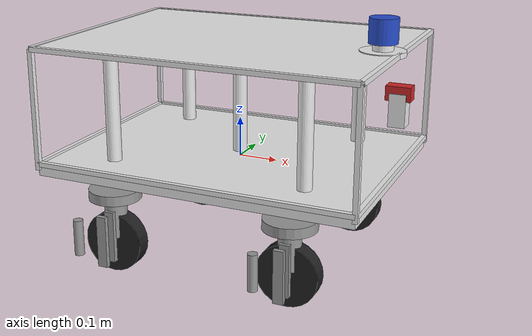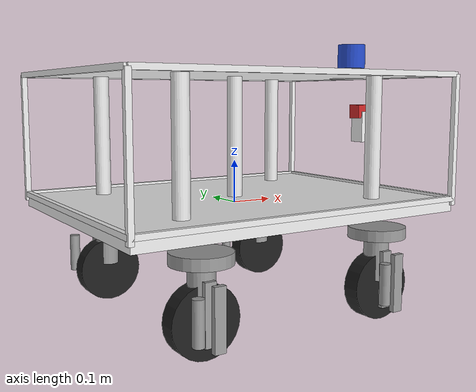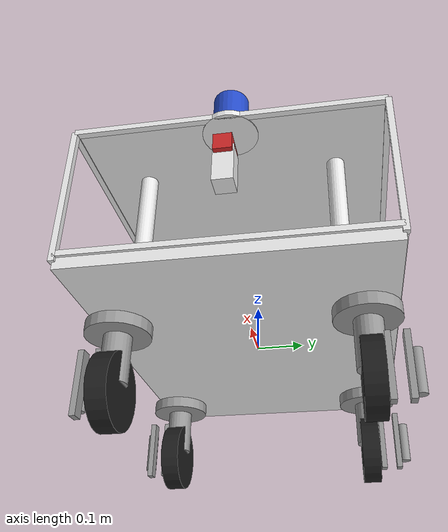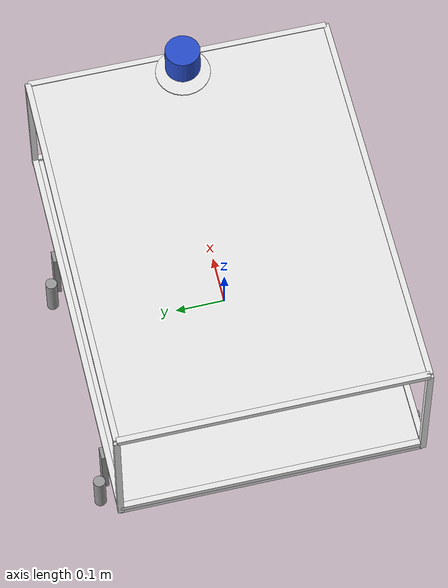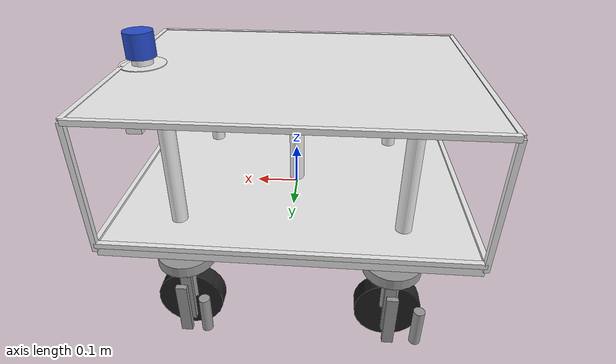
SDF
<?xml version='1.0' encoding='UTF-8'?>
<sdf version="1.9">
  <model name="inspection_bot">
    <link name="base_link">
      <inertial>
        <pose>-0.05165080332409973 -1.650415512465452e-05 -0.02308814404432133 0 0 0</pose>
        <mass>7.2199999999999998</mass>
        <inertia>
          <ixx>0.31320811063904169</ixx>
          <ixy>4.9172661324099557e-05</ixy>
          <ixz>-0.067711619664764536</ixz>
          <iyy>0.43423333109713758</iyy>
          <iyz>4.4758658044323012e-05</iyz>
          <izz>0.65877228650991904</izz>
        </inertia>
      </inertial>
      <collision name="base_link_collision">
        <pose>0 0 0 0 0 0</pose>
        <geometry>
          <box>
            <size>0.806 0.607 0.03</size>
          </box>
        </geometry>
        <surface>
          <contact>
            <ode />
          </contact>
          <friction>
            <ode />
          </friction>
        </surface>
      </collision>
      <collision name="base_link_fixed_joint_lump__camera_link_collision_1">
        <pose>0.4056 0 0.21 0 0 0</pose>
        <geometry>
          <box>
            <size>0.06 0.035 0.035</size>
          </box>
        </geometry>
        <surface>
          <contact>
            <ode />
          </contact>
          <friction>
            <ode />
          </friction>
        </surface>
      </collision>
      <collision name="base_link_fixed_joint_lump__lidar_link_collision_2">
        <pose>0.36101 -0.000993 0.35253 0 0 0</pose>
        <geometry>
          <cylinder>
            <length>0.059999999999999998</length>
            <radius>0.035000000000000003</radius>
          </cylinder>
        </geometry>
        <surface>
          <contact>
            <ode />
          </contact>
          <friction>
            <ode />
          </friction>
        </surface>
      </collision>
      <collision name="base_link_fixed_joint_lump__rl_steering_link_collision_3">
        <pose>-0.2284 0.238 -0.11 0 0 0</pose>
        <geometry>
          <cylinder>
            <length>0.080000000000000002</length>
            <radius>0.029999999999999999</radius>
          </cylinder>
        </geometry>
        <surface>
          <contact>
            <ode />
          </contact>
          <friction>
            <ode />
          </friction>
        </surface>
      </collision>
      <collision name="base_link_fixed_joint_lump__rr_steering_link_collision_4">
        <pose>-0.2284 -0.238 -0.11 0 0 0</pose>
        <geometry>
          <cylinder>
            <length>0.080000000000000002</length>
            <radius>0.029999999999999999</radius>
          </cylinder>
        </geometry>
        <surface>
          <contact>
            <ode />
          </contact>
          <friction>
            <ode />
          </friction>
        </surface>
      </collision>
      <visual name="base_link_visual">
        <pose>0 0 0 0 0 0</pose>
        <geometry>
          <box>
            <size>0.806 0.607 0.03</size>
          </box>
        </geometry>
        <material>
          <script>
            <name>Gazebo/White</name>
            <uri>file://media/materials/scripts/gazebo.material</uri>
          </script>
          <diffuse>0.9375 0.9375 0.9375 1</diffuse>
          <ambient>0.9375 0.9375 0.9375 1</ambient>
        </material>
      </visual>
      <visual name="base_link_visual_1">
        <pose>0 0 0.3 0 0 0</pose>
        <geometry>
          <box>
            <size>0.806 0.607 0.008</size>
          </box>
        </geometry>
        <material>
          <script>
            <name>Gazebo/White</name>
            <uri>file://media/materials/scripts/gazebo.material</uri>
          </script>
          <diffuse>0 0 0 1</diffuse>
          <ambient>0 0 0 1</ambient>
        </material>
      </visual>
      <visual name="base_link_visual_2">
        <pose>0 0.3035 0.015 0 0 0</pose>
        <geometry>
          <box>
            <size>0.806 0.012 0.012</size>
          </box>
        </geometry>
        <material>
          <script>
            <name>Gazebo/White</name>
            <uri>file://media/materials/scripts/gazebo.material</uri>
          </script>
          <diffuse>0 0 0 1</diffuse>
          <ambient>0 0 0 1</ambient>
        </material>
      </visual>
      <visual name="base_link_visual_3">
        <pose>0 -0.3035 0.015 0 0 0</pose>
        <geometry>
          <box>
            <size>0.806 0.012 0.012</size>
          </box>
        </geometry>
        <material>
          <script>
            <name>Gazebo/White</name>
            <uri>file://media/materials/scripts/gazebo.material</uri>
          </script>
          <diffuse>0 0 0 1</diffuse>
          <ambient>0 0 0 1</ambient>
        </material>
      </visual>
      <visual name="base_link_visual_4">
        <pose>0.403 0 0.015 0 0 0</pose>
        <geometry>
          <box>
            <size>0.012 0.607 0.012</size>
          </box>
        </geometry>
        <material>
          <script>
            <name>Gazebo/White</name>
            <uri>file://media/materials/scripts/gazebo.material</uri>
          </script>
          <diffuse>0 0 0 1</diffuse>
          <ambient>0 0 0 1</ambient>
        </material>
      </visual>
      <visual name="base_link_visual_5">
        <pose>-0.403 0 0.015 0 0 0</pose>
        <geometry>
          <box>
            <size>0.012 0.607 0.012</size>
          </box>
        </geometry>
        <material>
          <script>
            <name>Gazebo/White</name>
            <uri>file://media/materials/scripts/gazebo.material</uri>
          </script>
          <diffuse>0 0 0 1</diffuse>
          <ambient>0 0 0 1</ambient>
        </material>
      </visual>
      <visual name="base_link_visual_6">
        <pose>0 0.3035 0.3 0 0 0</pose>
        <geometry>
          <box>
            <size>0.806 0.012 0.012</size>
          </box>
        </geometry>
        <material>
          <script>
            <name>Gazebo/White</name>
            <uri>file://media/materials/scripts/gazebo.material</uri>
          </script>
          <diffuse>0 0 0 1</diffuse>
          <ambient>0 0 0 1</ambient>
        </material>
      </visual>
      <visual name="base_link_visual_7">
        <pose>0 -0.3035 0.3 0 0 0</pose>
        <geometry>
          <box>
            <size>0.806 0.012 0.012</size>
          </box>
        </geometry>
        <material>
          <script>
            <name>Gazebo/White</name>
            <uri>file://media/materials/scripts/gazebo.material</uri>
          </script>
          <diffuse>0 0 0 1</diffuse>
          <ambient>0 0 0 1</ambient>
        </material>
      </visual>
      <visual name="base_link_visual_8">
        <pose>0.403 0 0.3 0 0 0</pose>
        <geometry>
          <box>
            <size>0.012 0.607 0.012</size>
          </box>
        </geometry>
        <material>
          <script>
            <name>Gazebo/White</name>
            <uri>file://media/materials/scripts/gazebo.material</uri>
          </script>
          <diffuse>0 0 0 1</diffuse>
          <ambient>0 0 0 1</ambient>
        </material>
      </visual>
      <visual name="base_link_visual_9">
        <pose>-0.403 0 0.3 0 0 0</pose>
        <geometry>
          <box>
            <size>0.012 0.607 0.012</size>
          </box>
        </geometry>
        <material>
          <script>
            <name>Gazebo/White</name>
            <uri>file://media/materials/scripts/gazebo.material</uri>
          </script>
          <diffuse>0 0 0 1</diffuse>
          <ambient>0 0 0 1</ambient>
        </material>
      </visual>
      <visual name="base_link_visual_10">
        <pose>0.403 0.3035 0.15 0 0 0</pose>
        <geometry>
          <box>
            <size>0.012 0.012 0.3</size>
          </box>
        </geometry>
        <material>
          <script>
            <name>Gazebo/White</name>
            <uri>file://media/materials/scripts/gazebo.material</uri>
          </script>
          <diffuse>0 0 0 1</diffuse>
          <ambient>0 0 0 1</ambient>
        </material>
      </visual>
      <visual name="base_link_visual_11">
        <pose>0.403 -0.3035 0.15 0 0 0</pose>
        <geometry>
          <box>
            <size>0.012 0.012 0.3</size>
          </box>
        </geometry>
        <material>
          <script>
            <name>Gazebo/White</name>
            <uri>file://media/materials/scripts/gazebo.material</uri>
          </script>
          <diffuse>0 0 0 1</diffuse>
          <ambient>0 0 0 1</ambient>
        </material>
      </visual>
      <visual name="base_link_visual_12">
        <pose>-0.403 0.3035 0.15 0 0 0</pose>
        <geometry>
          <box>
            <size>0.012 0.012 0.3</size>
          </box>
        </geometry>
        <material>
          <script>
            <name>Gazebo/White</name>
            <uri>file://media/materials/scripts/gazebo.material</uri>
          </script>
          <diffuse>0 0 0 1</diffuse>
          <ambient>0 0 0 1</ambient>
        </material>
      </visual>
      <visual name="base_link_visual_13">
        <pose>-0.403 -0.3035 0.15 0 0 0</pose>
        <geometry>
          <box>
            <size>0.012 0.012 0.3</size>
          </box>
        </geometry>
        <material>
          <script>
            <name>Gazebo/White</name>
            <uri>file://media/materials/scripts/gazebo.material</uri>
          </script>
          <diffuse>0 0 0 1</diffuse>
          <ambient>0 0 0 1</ambient>
        </material>
      </visual>
      <visual name="base_link_visual_14">
        <pose>0.25 0.2 0.15 0 0 0</pose>
        <geometry>
          <cylinder>
            <length>0.29999999999999999</length>
            <radius>0.017999999999999999</radius>
          </cylinder>
        </geometry>
        <material>
          <script>
            <name>Gazebo/White</name>
            <uri>file://media/materials/scripts/gazebo.material</uri>
          </script>
          <diffuse>0 0 0 1</diffuse>
          <ambient>0 0 0 1</ambient>
        </material>
      </visual>
      <visual name="base_link_visual_15">
        <pose>0.25 -0.2 0.15 0 0 0</pose>
        <geometry>
          <cylinder>
            <length>0.29999999999999999</length>
            <radius>0.017999999999999999</radius>
          </cylinder>
        </geometry>
        <material>
          <script>
            <name>Gazebo/White</name>
            <uri>file://media/materials/scripts/gazebo.material</uri>
          </script>
          <diffuse>0 0 0 1</diffuse>
          <ambient>0 0 0 1</ambient>
        </material>
      </visual>
      <visual name="base_link_visual_16">
        <pose>-0.25 0.2 0.15 0 0 0</pose>
        <geometry>
          <cylinder>
            <length>0.29999999999999999</length>
            <radius>0.017999999999999999</radius>
          </cylinder>
        </geometry>
        <material>
          <script>
            <name>Gazebo/White</name>
            <uri>file://media/materials/scripts/gazebo.material</uri>
          </script>
          <diffuse>0 0 0 1</diffuse>
          <ambient>0 0 0 1</ambient>
        </material>
      </visual>
      <visual name="base_link_visual_17">
        <pose>-0.25 -0.2 0.15 0 0 0</pose>
        <geometry>
          <cylinder>
            <length>0.29999999999999999</length>
            <radius>0.017999999999999999</radius>
          </cylinder>
        </geometry>
        <material>
          <script>
            <name>Gazebo/White</name>
            <uri>file://media/materials/scripts/gazebo.material</uri>
          </script>
          <diffuse>0 0 0 1</diffuse>
          <ambient>0 0 0 1</ambient>
        </material>
      </visual>
      <visual name="base_link_visual_18">
        <pose>0 0 0.15 0 0 0</pose>
        <geometry>
          <cylinder>
            <length>0.29999999999999999</length>
            <radius>0.017999999999999999</radius>
          </cylinder>
        </geometry>
        <material>
          <script>
            <name>Gazebo/White</name>
            <uri>file://media/materials/scripts/gazebo.material</uri>
          </script>
          <diffuse>0 0 0 1</diffuse>
          <ambient>0 0 0 1</ambient>
        </material>
      </visual>
      <visual name="base_link_visual_19">
        <pose>0.36101 -0.000993 0.325 0 0 0</pose>
        <geometry>
          <cylinder>
            <length>0.050000000000000003</length>
            <radius>0.025000000000000001</radius>
          </cylinder>
        </geometry>
        <material>
          <script>
            <name>Gazebo/White</name>
            <uri>file://media/materials/scripts/gazebo.material</uri>
          </script>
          <diffuse>0 0 0 1</diffuse>
          <ambient>0 0 0 1</ambient>
        </material>
      </visual>
      <visual name="base_link_visual_20">
        <pose>0.36101 -0.000993 0.3 0 0 0</pose>
        <geometry>
          <cylinder>
            <length>0.012</length>
            <radius>0.055</radius>
          </cylinder>
        </geometry>
        <material>
          <script>
            <name>Gazebo/White</name>
            <uri>file://media/materials/scripts/gazebo.material</uri>
          </script>
          <diffuse>0 0 0 1</diffuse>
          <ambient>0 0 0 1</ambient>
        </material>
      </visual>
      <visual name="base_link_visual_21">
        <pose>0.4056 0 0.17 0 0 0</pose>
        <geometry>
          <box>
            <size>0.04 0.04 0.08</size>
          </box>
        </geometry>
        <material>
          <script>
            <name>Gazebo/White</name>
            <uri>file://media/materials/scripts/gazebo.material</uri>
          </script>
          <diffuse>0 0 0 1</diffuse>
          <ambient>0 0 0 1</ambient>
        </material>
      </visual>
      <visual name="base_link_fixed_joint_lump__camera_link_visual_22">
        <pose>0.4056 0 0.21 0 0 0</pose>
        <geometry>
          <box>
            <size>0.06 0.035 0.035</size>
          </box>
        </geometry>
        <material>
          <script>
            <name>Gazebo/Red</name>
            <uri>file://media/materials/scripts/gazebo.material</uri>
          </script>
          <diffuse>0.1875 0.1875 0.1875 1</diffuse>
          <ambient>0.1875 0.1875 0.1875 1</ambient>
        </material>
      </visual>
      <visual name="base_link_fixed_joint_lump__lidar_link_visual_23">
        <pose>0.36101 -0.000993 0.35253 0 0 0</pose>
        <geometry>
          <cylinder>
            <length>0.059999999999999998</length>
            <radius>0.035000000000000003</radius>
          </cylinder>
        </geometry>
        <material>
          <script>
            <name>Gazebo/Blue</name>
            <uri>file://media/materials/scripts/gazebo.material</uri>
          </script>
          <diffuse>0.125 0.375 1 1</diffuse>
          <ambient>0.125 0.375 1 1</ambient>
        </material>
      </visual>
      <visual name="base_link_fixed_joint_lump__rl_steering_link_visual_24">
        <pose>-0.2284 0.238 -0.055 0 0 0</pose>
        <geometry>
          <cylinder>
            <length>0.025000000000000001</length>
            <radius>0.065000000000000002</radius>
          </cylinder>
        </geometry>
        <material>
          <script>
            <name>Gazebo/Grey</name>
            <uri>file://media/materials/scripts/gazebo.material</uri>
          </script>
          <diffuse>0.5625 0.5625 0.5625 1</diffuse>
          <ambient>0.5625 0.5625 0.5625 1</ambient>
        </material>
      </visual>
      <visual name="base_link_fixed_joint_lump__rl_steering_link_visual_25">
        <pose>-0.2284 0.238 -0.11 0 0 0</pose>
        <geometry>
          <cylinder>
            <length>0.11</length>
            <radius>0.028000000000000001</radius>
          </cylinder>
        </geometry>
        <material>
          <script>
            <name>Gazebo/Grey</name>
            <uri>file://media/materials/scripts/gazebo.material</uri>
          </script>
          <diffuse>0 0 0 1</diffuse>
          <ambient>0 0 0 1</ambient>
        </material>
      </visual>
      <visual name="base_link_fixed_joint_lump__rl_steering_link_visual_26">
        <pose>-0.2284 0.303 -0.16 0 0 0</pose>
        <geometry>
          <box>
            <size>0.025 0.012 0.13</size>
          </box>
        </geometry>
        <material>
          <script>
            <name>Gazebo/Grey</name>
            <uri>file://media/materials/scripts/gazebo.material</uri>
          </script>
          <diffuse>0 0 0 1</diffuse>
          <ambient>0 0 0 1</ambient>
        </material>
      </visual>
      <visual name="base_link_fixed_joint_lump__rl_steering_link_visual_27">
        <pose>-0.2284 0.268 -0.16 0 0 0</pose>
        <geometry>
          <box>
            <size>0.025 0.012 0.13</size>
          </box>
        </geometry>
        <material>
          <script>
            <name>Gazebo/Grey</name>
            <uri>file://media/materials/scripts/gazebo.material</uri>
          </script>
          <diffuse>0 0 0 1</diffuse>
          <ambient>0 0 0 1</ambient>
        </material>
      </visual>
      <visual name="base_link_fixed_joint_lump__rl_steering_link_visual_28">
        <pose>-0.2834 0.323 -0.15 0 0 0</pose>
        <geometry>
          <cylinder>
            <length>0.089999999999999997</length>
            <radius>0.012</radius>
          </cylinder>
        </geometry>
        <material>
          <script>
            <name>Gazebo/Grey</name>
            <uri>file://media/materials/scripts/gazebo.material</uri>
          </script>
          <diffuse>0 0 0 1</diffuse>
          <ambient>0 0 0 1</ambient>
        </material>
      </visual>
      <visual name="base_link_fixed_joint_lump__rr_steering_link_visual_29">
        <pose>-0.2284 -0.238 -0.055 0 0 0</pose>
        <geometry>
          <cylinder>
            <length>0.025000000000000001</length>
            <radius>0.065000000000000002</radius>
          </cylinder>
        </geometry>
        <material>
          <script>
            <name>Gazebo/Grey</name>
            <uri>file://media/materials/scripts/gazebo.material</uri>
          </script>
          <diffuse>0.5625 0.5625 0.5625 1</diffuse>
          <ambient>0.5625 0.5625 0.5625 1</ambient>
        </material>
      </visual>
      <visual name="base_link_fixed_joint_lump__rr_steering_link_visual_30">
        <pose>-0.2284 -0.238 -0.11 0 0 0</pose>
        <geometry>
          <cylinder>
            <length>0.11</length>
            <radius>0.028000000000000001</radius>
          </cylinder>
        </geometry>
        <material>
          <script>
            <name>Gazebo/Grey</name>
            <uri>file://media/materials/scripts/gazebo.material</uri>
          </script>
          <diffuse>0 0 0 1</diffuse>
          <ambient>0 0 0 1</ambient>
        </material>
      </visual>
      <visual name="base_link_fixed_joint_lump__rr_steering_link_visual_31">
        <pose>-0.2284 -0.303 -0.16 0 0 0</pose>
        <geometry>
          <box>
            <size>0.025 0.012 0.13</size>
          </box>
        </geometry>
        <material>
          <script>
            <name>Gazebo/Grey</name>
            <uri>file://media/materials/scripts/gazebo.material</uri>
          </script>
          <diffuse>0 0 0 1</diffuse>
          <ambient>0 0 0 1</ambient>
        </material>
      </visual>
      <visual name="base_link_fixed_joint_lump__rr_steering_link_visual_32">
        <pose>-0.2284 -0.268 -0.16 0 0 0</pose>
        <geometry>
          <box>
            <size>0.025 0.012 0.13</size>
          </box>
        </geometry>
        <material>
          <script>
            <name>Gazebo/Grey</name>
            <uri>file://media/materials/scripts/gazebo.material</uri>
          </script>
          <diffuse>0 0 0 1</diffuse>
          <ambient>0 0 0 1</ambient>
        </material>
      </visual>
      <visual name="base_link_fixed_joint_lump__rr_steering_link_visual_33">
        <pose>-0.2834 -0.323 -0.15 0 0 0</pose>
        <geometry>
          <cylinder>
            <length>0.089999999999999997</length>
            <radius>0.012</radius>
          </cylinder>
        </geometry>
        <material>
          <script>
            <name>Gazebo/Grey</name>
            <uri>file://media/materials/scripts/gazebo.material</uri>
          </script>
          <diffuse>0 0 0 1</diffuse>
          <ambient>0 0 0 1</ambient>
        </material>
      </visual>
      <sensor name="phase2b_lidar" type="gpu_lidar">
        <visualize>true</visualize>
        <update_rate>10</update_rate>
        <topic>/scan_raw</topic>
        <lidar>
          <scan>
            <horizontal>
              <samples>720</samples>
              <resolution>1</resolution>
              <min_angle>-3.1415899999999999</min_angle>
              <max_angle>3.1415899999999999</max_angle>
            </horizontal>
            <vertical>
              <samples>1</samples>
              <min_angle>0</min_angle>
              <max_angle>0</max_angle>
            </vertical>
          </scan>
          <range>
            <min>0.10000000000000001</min>
            <max>15</max>
            <resolution>0.01</resolution>
          </range>
        </lidar>
        <pose>0.36101 -0.000993 0.35253 0 -0 0</pose>
        <alwaysOn>1</alwaysOn>
      <frame_id>lidar_link</frame_id></sensor>
    </link>
    <joint name="fl_steering_joint" type="revolute">
      <pose relative_to="base_link">0.2316 0.238 -0.055 0 0 0</pose>
      <parent>base_link</parent>
      <child>fl_steering_link</child>
      <axis>
        <xyz>0 0 1</xyz>
        <limit>
          <lower>-10000000000000000</lower>
          <upper>10000000000000000</upper>
        </limit>
        <dynamics>
          <damping>5</damping>
          <friction>1</friction>
          <spring_reference>0</spring_reference>
          <spring_stiffness>0</spring_stiffness>
        </dynamics>
      </axis>
    </joint>
    <link name="fl_steering_link">
      <pose relative_to="fl_steering_joint">0 0 0 0 0 0</pose>
      <inertial>
        <pose>0 0 -0.06 0 0 0</pose>
        <mass>1</mass>
        <inertia>
          <ixx>0.002</ixx>
          <ixy>0</ixy>
          <ixz>0</ixz>
          <iyy>0.002</iyy>
          <iyz>0</iyz>
          <izz>0.002</izz>
        </inertia>
      </inertial>
      <collision name="fl_steering_link_collision">
        <pose>0 0 -0.055 0 0 0</pose>
        <geometry>
          <cylinder>
            <length>0.080000000000000002</length>
            <radius>0.029999999999999999</radius>
          </cylinder>
        </geometry>
        <surface>
          <contact>
            <ode />
          </contact>
          <friction>
            <ode />
          </friction>
        </surface>
      </collision>
      <visual name="fl_steering_link_visual">
        <pose>0 0 0 0 0 0</pose>
        <geometry>
          <cylinder>
            <length>0.025000000000000001</length>
            <radius>0.065000000000000002</radius>
          </cylinder>
        </geometry>
        <material>
          <script>
            <name>Gazebo/Grey</name>
            <uri>file://media/materials/scripts/gazebo.material</uri>
          </script>
          <diffuse>0.5625 0.5625 0.5625 1</diffuse>
          <ambient>0.5625 0.5625 0.5625 1</ambient>
        </material>
      </visual>
      <visual name="fl_steering_link_visual_1">
        <pose>0 0 -0.055 0 0 0</pose>
        <geometry>
          <cylinder>
            <length>0.11</length>
            <radius>0.028000000000000001</radius>
          </cylinder>
        </geometry>
        <material>
          <script>
            <name>Gazebo/Grey</name>
            <uri>file://media/materials/scripts/gazebo.material</uri>
          </script>
          <diffuse>0 0 0 1</diffuse>
          <ambient>0 0 0 1</ambient>
        </material>
      </visual>
      <visual name="fl_steering_link_visual_2">
        <pose>0 0.065 -0.105 0 0 0</pose>
        <geometry>
          <box>
            <size>0.025 0.012 0.13</size>
          </box>
        </geometry>
        <material>
          <script>
            <name>Gazebo/Grey</name>
            <uri>file://media/materials/scripts/gazebo.material</uri>
          </script>
          <diffuse>0 0 0 1</diffuse>
          <ambient>0 0 0 1</ambient>
        </material>
      </visual>
      <visual name="fl_steering_link_visual_3">
        <pose>0 0.03 -0.105 0 0 0</pose>
        <geometry>
          <box>
            <size>0.025 0.012 0.13</size>
          </box>
        </geometry>
        <material>
          <script>
            <name>Gazebo/Grey</name>
            <uri>file://media/materials/scripts/gazebo.material</uri>
          </script>
          <diffuse>0 0 0 1</diffuse>
          <ambient>0 0 0 1</ambient>
        </material>
      </visual>
      <visual name="fl_steering_link_visual_4">
        <pose>-0.055 0.08500000000000001 -0.095 0 0 0</pose>
        <geometry>
          <cylinder>
            <length>0.089999999999999997</length>
            <radius>0.012</radius>
          </cylinder>
        </geometry>
        <material>
          <script>
            <name>Gazebo/Grey</name>
            <uri>file://media/materials/scripts/gazebo.material</uri>
          </script>
          <diffuse>0 0 0 1</diffuse>
          <ambient>0 0 0 1</ambient>
        </material>
      </visual>
    </link>
    <joint name="fl_wheel_joint" type="revolute">
      <pose relative_to="fl_steering_link">0 0 -0.124 0 0 0</pose>
      <parent>fl_steering_link</parent>
      <child>fl_wheel_link</child>
      <axis>
        <xyz>0 1 0</xyz>
        <limit>
          <lower>-10000000000000000</lower>
          <upper>10000000000000000</upper>
        </limit>
        <dynamics>
          <damping>0.10000000000000001</damping>
          <friction>0.02</friction>
          <spring_reference>0</spring_reference>
          <spring_stiffness>0</spring_stiffness>
        </dynamics>
      </axis>
    </joint>
    <link name="fl_wheel_link">
      <pose relative_to="fl_wheel_joint">0 0 0 0 0 0</pose>
      <inertial>
        <pose>0 0 0 0 0 0</pose>
        <mass>0.80000000000000004</mass>
        <inertia>
          <ixx>0.002</ixx>
          <ixy>0</ixy>
          <ixz>0</ixz>
          <iyy>0.002</iyy>
          <iyz>0</iyz>
          <izz>0.002</izz>
        </inertia>
      </inertial>
      <collision name="fl_wheel_link_collision">
        <pose>0 0 0 -1.5708 0 0</pose>
        <geometry>
          <cylinder>
            <length>0.040000000000000001</length>
            <radius>0.075999999999999998</radius>
          </cylinder>
        </geometry>
        <surface>
          <contact>
            <ode />
          </contact>
          <friction>
            <ode>
              <mu>1.5</mu>
              <mu2>1.5</mu2>
            </ode>
          </friction>
        </surface>
      </collision>
      <visual name="fl_wheel_link_visual">
        <pose>0 0 0 -1.5708 0 0</pose>
        <geometry>
          <cylinder>
            <length>0.040000000000000001</length>
            <radius>0.075999999999999998</radius>
          </cylinder>
        </geometry>
        <material>
          <script>
            <name>Gazebo/FlatBlack</name>
            <uri>file://media/materials/scripts/gazebo.material</uri>
          </script>
          <diffuse>0.1875 0.1875 0.1875 1</diffuse>
          <ambient>0.1875 0.1875 0.1875 1</ambient>
        </material>
      </visual>
    </link>
    <joint name="fr_steering_joint" type="revolute">
      <pose relative_to="base_link">0.2316 -0.238 -0.055 0 0 0</pose>
      <parent>base_link</parent>
      <child>fr_steering_link</child>
      <axis>
        <xyz>0 0 1</xyz>
        <limit>
          <lower>-10000000000000000</lower>
          <upper>10000000000000000</upper>
        </limit>
        <dynamics>
          <damping>5</damping>
          <friction>1</friction>
          <spring_reference>0</spring_reference>
          <spring_stiffness>0</spring_stiffness>
        </dynamics>
      </axis>
    </joint>
    <link name="fr_steering_link">
      <pose relative_to="fr_steering_joint">0 0 0 0 0 0</pose>
      <inertial>
        <pose>0 0 -0.06 0 0 0</pose>
        <mass>1</mass>
        <inertia>
          <ixx>0.002</ixx>
          <ixy>0</ixy>
          <ixz>0</ixz>
          <iyy>0.002</iyy>
          <iyz>0</iyz>
          <izz>0.002</izz>
        </inertia>
      </inertial>
      <collision name="fr_steering_link_collision">
        <pose>0 0 -0.055 0 0 0</pose>
        <geometry>
          <cylinder>
            <length>0.080000000000000002</length>
            <radius>0.029999999999999999</radius>
          </cylinder>
        </geometry>
        <surface>
          <contact>
            <ode />
          </contact>
          <friction>
            <ode />
          </friction>
        </surface>
      </collision>
      <visual name="fr_steering_link_visual">
        <pose>0 0 0 0 0 0</pose>
        <geometry>
          <cylinder>
            <length>0.025000000000000001</length>
            <radius>0.065000000000000002</radius>
          </cylinder>
        </geometry>
        <material>
          <script>
            <name>Gazebo/Grey</name>
            <uri>file://media/materials/scripts/gazebo.material</uri>
          </script>
          <diffuse>0.5625 0.5625 0.5625 1</diffuse>
          <ambient>0.5625 0.5625 0.5625 1</ambient>
        </material>
      </visual>
      <visual name="fr_steering_link_visual_1">
        <pose>0 0 -0.055 0 0 0</pose>
        <geometry>
          <cylinder>
            <length>0.11</length>
            <radius>0.028000000000000001</radius>
          </cylinder>
        </geometry>
        <material>
          <script>
            <name>Gazebo/Grey</name>
            <uri>file://media/materials/scripts/gazebo.material</uri>
          </script>
          <diffuse>0 0 0 1</diffuse>
          <ambient>0 0 0 1</ambient>
        </material>
      </visual>
      <visual name="fr_steering_link_visual_2">
        <pose>0 -0.065 -0.105 0 0 0</pose>
        <geometry>
          <box>
            <size>0.025 0.012 0.13</size>
          </box>
        </geometry>
        <material>
          <script>
            <name>Gazebo/Grey</name>
            <uri>file://media/materials/scripts/gazebo.material</uri>
          </script>
          <diffuse>0 0 0 1</diffuse>
          <ambient>0 0 0 1</ambient>
        </material>
      </visual>
      <visual name="fr_steering_link_visual_3">
        <pose>0 -0.03 -0.105 0 0 0</pose>
        <geometry>
          <box>
            <size>0.025 0.012 0.13</size>
          </box>
        </geometry>
        <material>
          <script>
            <name>Gazebo/Grey</name>
            <uri>file://media/materials/scripts/gazebo.material</uri>
          </script>
          <diffuse>0 0 0 1</diffuse>
          <ambient>0 0 0 1</ambient>
        </material>
      </visual>
      <visual name="fr_steering_link_visual_4">
        <pose>-0.055 -0.08500000000000001 -0.095 0 0 0</pose>
        <geometry>
          <cylinder>
            <length>0.089999999999999997</length>
            <radius>0.012</radius>
          </cylinder>
        </geometry>
        <material>
          <script>
            <name>Gazebo/Grey</name>
            <uri>file://media/materials/scripts/gazebo.material</uri>
          </script>
          <diffuse>0 0 0 1</diffuse>
          <ambient>0 0 0 1</ambient>
        </material>
      </visual>
    </link>
    <joint name="fr_wheel_joint" type="revolute">
      <pose relative_to="fr_steering_link">0 0 -0.124 0 0 0</pose>
      <parent>fr_steering_link</parent>
      <child>fr_wheel_link</child>
      <axis>
        <xyz>0 1 0</xyz>
        <limit>
          <lower>-10000000000000000</lower>
          <upper>10000000000000000</upper>
        </limit>
        <dynamics>
          <damping>0.10000000000000001</damping>
          <friction>0.02</friction>
          <spring_reference>0</spring_reference>
          <spring_stiffness>0</spring_stiffness>
        </dynamics>
      </axis>
    </joint>
    <link name="fr_wheel_link">
      <pose relative_to="fr_wheel_joint">0 0 0 0 0 0</pose>
      <inertial>
        <pose>0 0 0 0 0 0</pose>
        <mass>0.80000000000000004</mass>
        <inertia>
          <ixx>0.002</ixx>
          <ixy>0</ixy>
          <ixz>0</ixz>
          <iyy>0.002</iyy>
          <iyz>0</iyz>
          <izz>0.002</izz>
        </inertia>
      </inertial>
      <collision name="fr_wheel_link_collision">
        <pose>0 0 0 -1.5708 0 0</pose>
        <geometry>
          <cylinder>
            <length>0.040000000000000001</length>
            <radius>0.075999999999999998</radius>
          </cylinder>
        </geometry>
        <surface>
          <contact>
            <ode />
          </contact>
          <friction>
            <ode>
              <mu>1.5</mu>
              <mu2>1.5</mu2>
            </ode>
          </friction>
        </surface>
      </collision>
      <visual name="fr_wheel_link_visual">
        <pose>0 0 0 -1.5708 0 0</pose>
        <geometry>
          <cylinder>
            <length>0.040000000000000001</length>
            <radius>0.075999999999999998</radius>
          </cylinder>
        </geometry>
        <material>
          <script>
            <name>Gazebo/FlatBlack</name>
            <uri>file://media/materials/scripts/gazebo.material</uri>
          </script>
          <diffuse>0.1875 0.1875 0.1875 1</diffuse>
          <ambient>0.1875 0.1875 0.1875 1</ambient>
        </material>
      </visual>
    </link>
    <joint name="rl_wheel_joint" type="revolute">
      <pose relative_to="base_link">-0.2284 0.238 -0.179 0 0 0</pose>
      <parent>base_link</parent>
      <child>rl_wheel_link</child>
      <axis>
        <xyz>0 1 0</xyz>
        <limit>
          <lower>-10000000000000000</lower>
          <upper>10000000000000000</upper>
        </limit>
        <dynamics>
          <damping>0.10000000000000001</damping>
          <friction>0.02</friction>
          <spring_reference>0</spring_reference>
          <spring_stiffness>0</spring_stiffness>
        </dynamics>
      </axis>
    </joint>
    <link name="rl_wheel_link">
      <pose relative_to="rl_wheel_joint">0 0 0 0 0 0</pose>
      <inertial>
        <pose>0 0 0 0 0 0</pose>
        <mass>0.80000000000000004</mass>
        <inertia>
          <ixx>0.002</ixx>
          <ixy>0</ixy>
          <ixz>0</ixz>
          <iyy>0.002</iyy>
          <iyz>0</iyz>
          <izz>0.002</izz>
        </inertia>
      </inertial>
      <collision name="rl_wheel_link_collision">
        <pose>0 0 0 -1.5708 0 0</pose>
        <geometry>
          <cylinder>
            <length>0.040000000000000001</length>
            <radius>0.075999999999999998</radius>
          </cylinder>
        </geometry>
        <surface>
          <contact>
            <ode />
          </contact>
          <friction>
            <ode>
              <mu>1.5</mu>
              <mu2>1.5</mu2>
            </ode>
          </friction>
        </surface>
      </collision>
      <visual name="rl_wheel_link_visual">
        <pose>0 0 0 -1.5708 0 0</pose>
        <geometry>
          <cylinder>
            <length>0.040000000000000001</length>
            <radius>0.075999999999999998</radius>
          </cylinder>
        </geometry>
        <material>
          <script>
            <name>Gazebo/FlatBlack</name>
            <uri>file://media/materials/scripts/gazebo.material</uri>
          </script>
          <diffuse>0.1875 0.1875 0.1875 1</diffuse>
          <ambient>0.1875 0.1875 0.1875 1</ambient>
        </material>
      </visual>
    </link>
    <joint name="rr_wheel_joint" type="revolute">
      <pose relative_to="base_link">-0.2284 -0.238 -0.179 0 0 0</pose>
      <parent>base_link</parent>
      <child>rr_wheel_link</child>
      <axis>
        <xyz>0 1 0</xyz>
        <limit>
          <lower>-10000000000000000</lower>
          <upper>10000000000000000</upper>
        </limit>
        <dynamics>
          <damping>0.10000000000000001</damping>
          <friction>0.02</friction>
          <spring_reference>0</spring_reference>
          <spring_stiffness>0</spring_stiffness>
        </dynamics>
      </axis>
    </joint>
    <link name="rr_wheel_link">
      <pose relative_to="rr_wheel_joint">0 0 0 0 0 0</pose>
      <inertial>
        <pose>0 0 0 0 0 0</pose>
        <mass>0.80000000000000004</mass>
        <inertia>
          <ixx>0.002</ixx>
          <ixy>0</ixy>
          <ixz>0</ixz>
          <iyy>0.002</iyy>
          <iyz>0</iyz>
          <izz>0.002</izz>
        </inertia>
      </inertial>
      <collision name="rr_wheel_link_collision">
        <pose>0 0 0 -1.5708 0 0</pose>
        <geometry>
          <cylinder>
            <length>0.040000000000000001</length>
            <radius>0.075999999999999998</radius>
          </cylinder>
        </geometry>
        <surface>
          <contact>
            <ode />
          </contact>
          <friction>
            <ode>
              <mu>1.5</mu>
              <mu2>1.5</mu2>
            </ode>
          </friction>
        </surface>
      </collision>
      <visual name="rr_wheel_link_visual">
        <pose>0 0 0 -1.5708 0 0</pose>
        <geometry>
          <cylinder>
            <length>0.040000000000000001</length>
            <radius>0.075999999999999998</radius>
          </cylinder>
        </geometry>
        <material>
          <script>
            <name>Gazebo/FlatBlack</name>
            <uri>file://media/materials/scripts/gazebo.material</uri>
          </script>
          <diffuse>0.1875 0.1875 0.1875 1</diffuse>
          <ambient>0.1875 0.1875 0.1875 1</ambient>
        </material>
      </visual>
    </link>
    <plugin name="gz_ros2_control::GazeboSimROS2ControlPlugin" filename="libgz_ros2_control-system.so">
      <robot_param>robot_description</robot_param>
      <robot_param_node>robot_state_publisher</robot_param_node>
      <parameters>/home/jetson/ros2_ws/install/inspection_bot_description/share/inspection_bot_description/config/controllers.yaml</parameters>
    </plugin>
    <frame name="camera_joint" attached_to="base_link">
      <pose>0.4056 0 0.21 0 -0 0</pose>
    </frame>
    <frame name="camera_link" attached_to="camera_joint" />
    <frame name="lidar_joint" attached_to="base_link">
      <pose>0.36101 -0.000993 0.35253 0 -0 0</pose>
    </frame>
    <frame name="lidar_link" attached_to="lidar_joint" />
    <frame name="rl_steering_joint" attached_to="base_link">
      <pose>-0.2284 0.238 -0.055 0 -0 0</pose>
    </frame>
    <frame name="rl_steering_link" attached_to="rl_steering_joint" />
    <frame name="rr_steering_joint" attached_to="base_link">
      <pose>-0.2284 -0.238 -0.055 0 -0 0</pose>
    </frame>
    <frame name="rr_steering_link" attached_to="rr_steering_joint" />
  </model>
</sdf>
